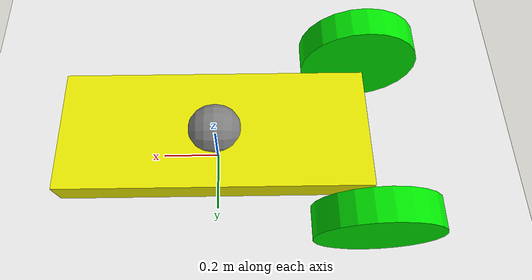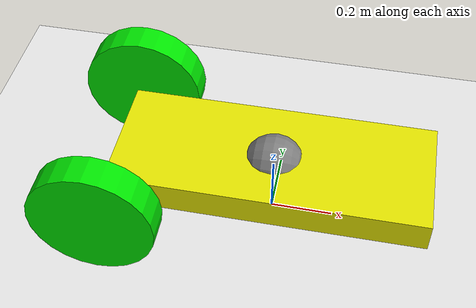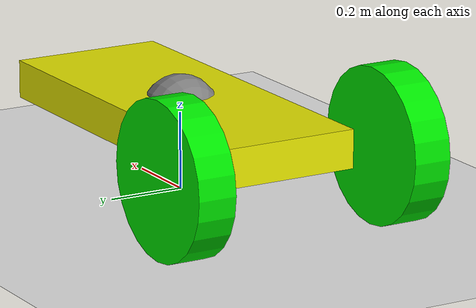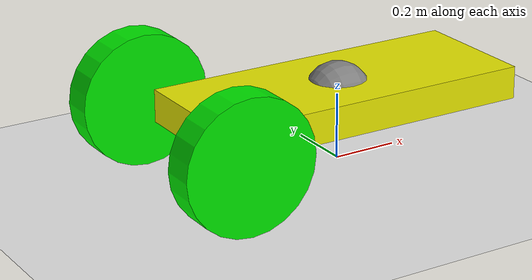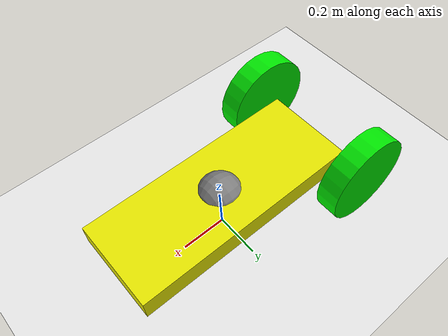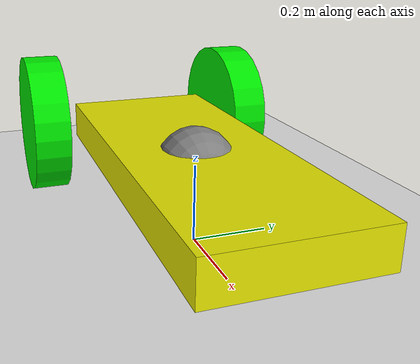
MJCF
<mujoco model="plane_and_cube">
    <option gravity="0 0 -9.8" />

    <!-- The world body -->
    <worldbody>
        <!-- Light source -->
        <light name="main_light" pos="0 0 10.8" dir="0 0 -1" diffuse=".5 .5 .5" specular="0.1 0.1 0.1" />
        <!-- World frame -->
        <frame name="world_frame" pos="0 0 0.1" euler="0 0 0" />

        <!-- The ground plane -->
        <geom name="ground" type="plane" size="5 5 0.1" rgba="0.9 0.9 0.9 1" />

        <body name="chassis" pos="0 0 0.2" euler="0 90 0">
            <joint type="free"/>
            <geom type="box" size=".05 .2 .5" rgba="0.9 .9 0 1" />
            <site name="marker" pos="0 0 0" size="0.1" />

            <!-- length, radius to define cylnder. length, breadth and height for cuboid-->
            <body name="left-tire" pos="0 0.3 -0.5" euler="90 0 0">
                <joint name="left-wheel" type="hinge" axis="0 0 -1"/>
                <geom type="cylinder" size=".2 .05" rgba="0 .9 0 1" />
            </body>

            <body name="right-tire" pos="0 -0.3 -0.5" euler="90 0 0">
                <joint name="right-wheel" type="hinge" axis="0 0 -1"/>
                <geom type="cylinder" size=".2 .05" rgba="0 .9 0 1" />
            </body>

        </body>

    </worldbody>

    <!-- Actuator and sensor definitions (optional) -->
    <actuator>
        <velocity name="left-velocity-servo" joint="left-wheel" kv="100"/>
        <velocity name="right-velocity-servo" joint="right-wheel" kv="100"/>
        <!-- Define any actuators here -->
    </actuator>

    <sensor>
        <!-- Define any sensors here -->
         <framepos objtype="site" objname="marker"/>
    </sensor>
</mujoco>
